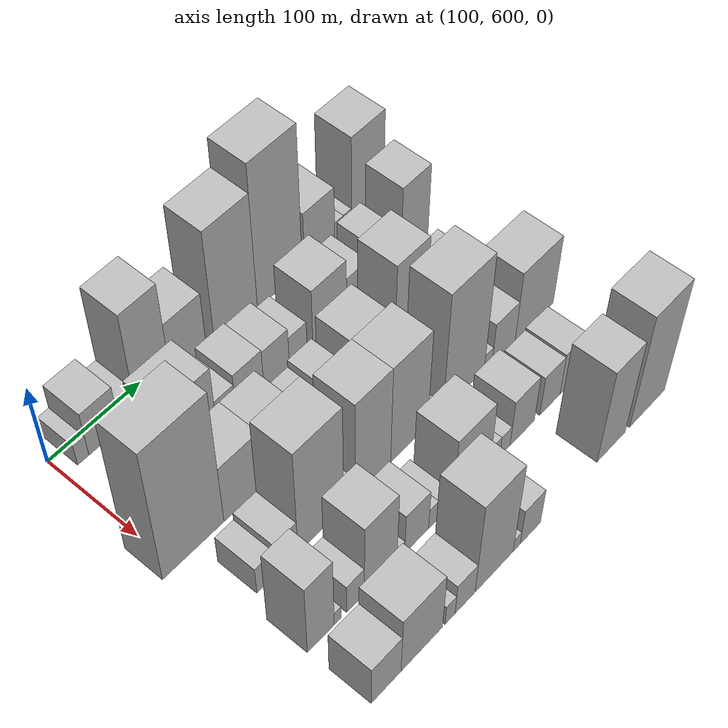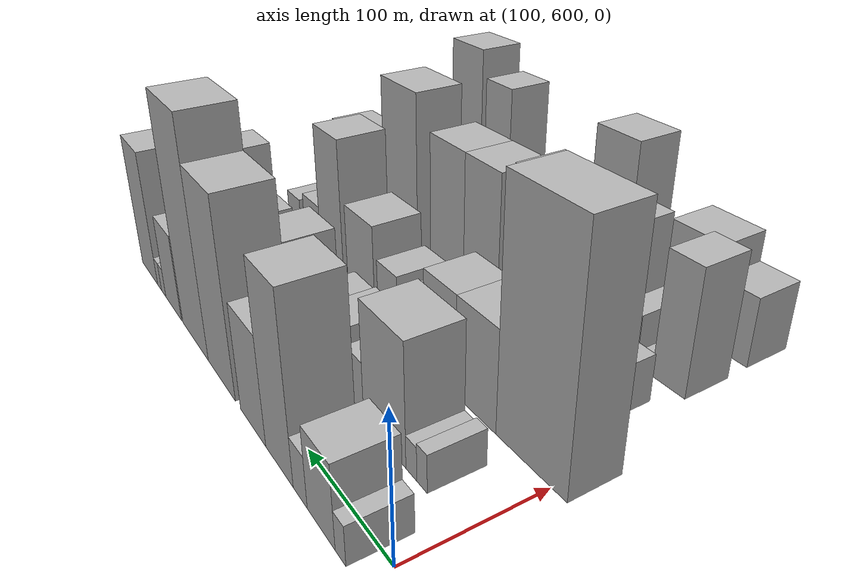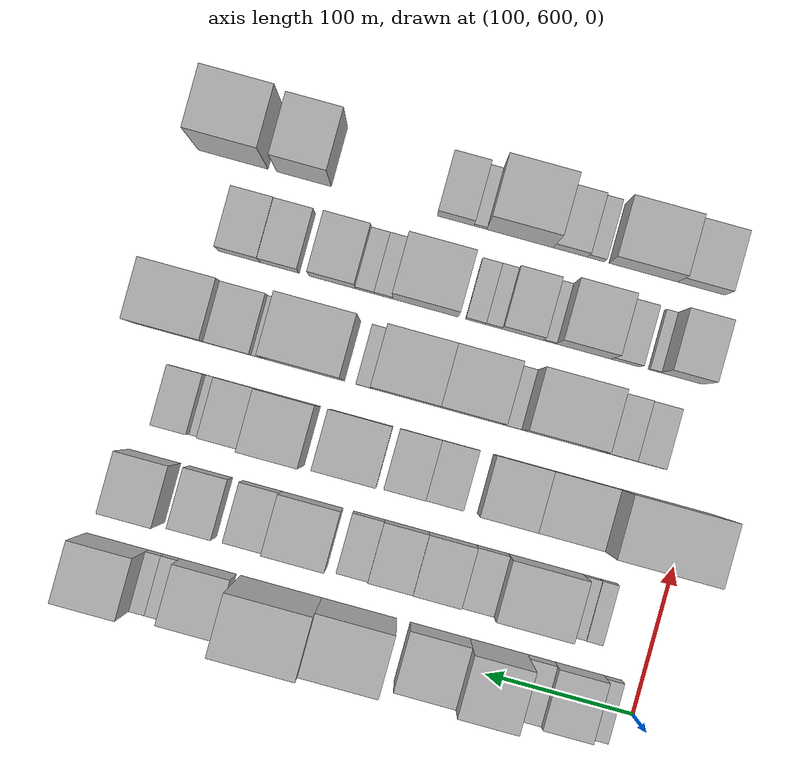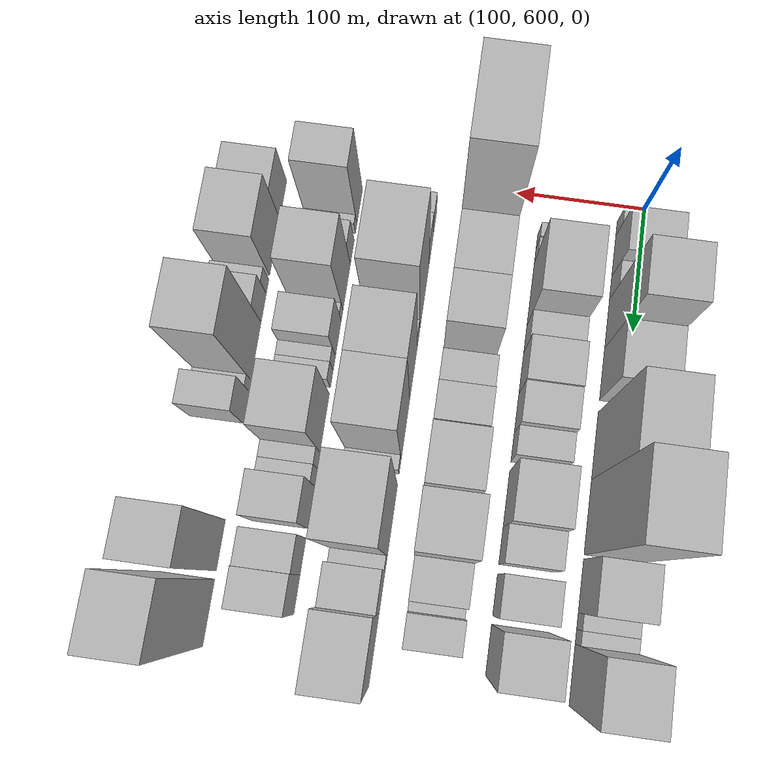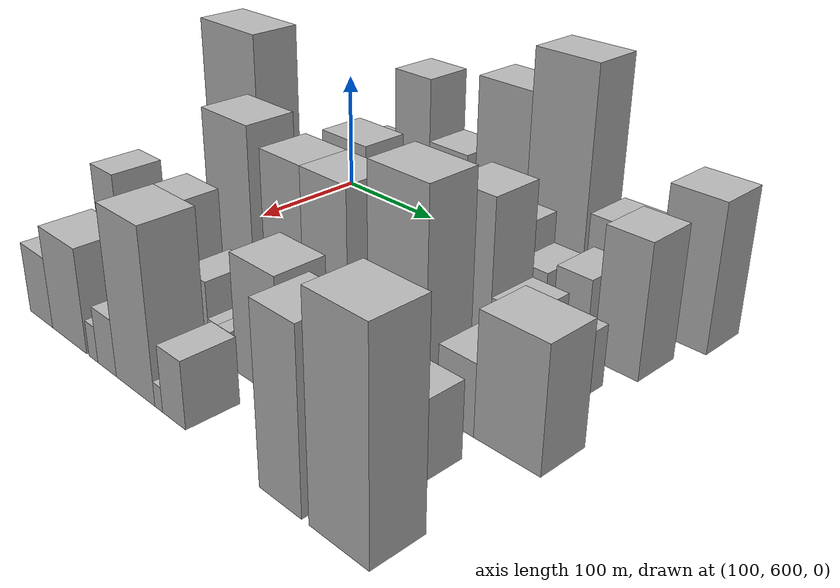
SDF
<sdf version="1.6">
 <world name="default">
  <model name="building_44">
   <static>1</static>
   <pose>100.0000 619.0629 0 0.000000 0.000000 0.000000</pose>
   <link name="link">
    <pose>0 0 13.50 0 0 0</pose>
    <collision name="collision"><geometry><box><size>40.0000 11.8824 27.0000</size></box></geometry></collision>
    <visual name="visual">
     <cast_shadows>0</cast_shadows>
     <geometry><box><size>40.0000 11.8824 27.0000</size></box></geometry>
     <material>
      <script>
       <uri>model://HANNAS_wall/materials/scripts</uri>
       <uri>model://HANNAS_wall/materials/textures</uri>
       <name>vrc/HANNAS_wall</name>
      </script>
     </material>
    </visual>
   </link>
  </model>
  <model name="building_45">
   <static>1</static>
   <pose>100.0000 641.6522 0 0.000000 0.000000 0.000000</pose>
   <link name="link">
    <pose>0 0 28.50 0 0 0</pose>
    <collision name="collision"><geometry><box><size>40.0000 33.2962 57.0000</size></box></geometry></collision>
    <visual name="visual">
     <cast_shadows>0</cast_shadows>
     <geometry><box><size>40.0000 33.2962 57.0000</size></box></geometry>
     <material>
      <script>
       <uri>model://HANNAS_wall/materials/scripts</uri>
       <uri>model://HANNAS_wall/materials/textures</uri>
       <name>vrc/HANNAS_wall</name>
      </script>
     </material>
    </visual>
   </link>
  </model>
  <model name="building_46">
   <static>1</static>
   <pose>100.0000 667.4496 0 0.000000 0.000000 0.000000</pose>
   <link name="link">
    <pose>0 0 18.00 0 0 0</pose>
    <collision name="collision"><geometry><box><size>40.0000 18.2986 36.0000</size></box></geometry></collision>
    <visual name="visual">
     <cast_shadows>0</cast_shadows>
     <geometry><box><size>40.0000 18.2986 36.0000</size></box></geometry>
     <material>
      <script>
       <uri>model://HANNAS_wall/materials/scripts</uri>
       <uri>model://HANNAS_wall/materials/textures</uri>
       <name>vrc/HANNAS_wall</name>
      </script>
     </material>
    </visual>
   </link>
  </model>
  <model name="building_47">
   <static>1</static>
   <pose>100.0000 696.1448 0 0.000000 0.000000 0.000000</pose>
   <link name="link">
    <pose>0 0 64.50 0 0 0</pose>
    <collision name="collision"><geometry><box><size>40.0000 39.0918 129.0000</size></box></geometry></collision>
    <visual name="visual">
     <cast_shadows>0</cast_shadows>
     <geometry><box><size>40.0000 39.0918 129.0000</size></box></geometry>
     <material>
      <script>
       <uri>model://HANNAS_wall/materials/scripts</uri>
       <uri>model://HANNAS_wall/materials/textures</uri>
       <name>vrc/HANNAS_wall</name>
      </script>
     </material>
    </visual>
   </link>
  </model>
  <model name="building_48">
   <static>1</static>
   <pose>100.0000 735.9375 0 0.000000 0.000000 0.000000</pose>
   <link name="link">
    <pose>0 0 39.00 0 0 0</pose>
    <collision name="collision"><geometry><box><size>40.0000 40.4936 78.0000</size></box></geometry></collision>
    <visual name="visual">
     <cast_shadows>0</cast_shadows>
     <geometry><box><size>40.0000 40.4936 78.0000</size></box></geometry>
     <material>
      <script>
       <uri>model://HANNAS_wall/materials/scripts</uri>
       <uri>model://HANNAS_wall/materials/textures</uri>
       <name>vrc/HANNAS_wall</name>
      </script>
     </material>
    </visual>
   </link>
  </model>
  <model name="building_49">
   <static>1</static>
   <pose>100.0000 790.4984 0 0.000000 0.000000 0.000000</pose>
   <link name="link">
    <pose>0 0 72.00 0 0 0</pose>
    <collision name="collision"><geometry><box><size>40.0000 50.6283 144.0000</size></box></geometry></collision>
    <visual name="visual">
     <cast_shadows>0</cast_shadows>
     <geometry><box><size>40.0000 50.6283 144.0000</size></box></geometry>
     <material>
      <script>
       <uri>model://HANNAS_wall/materials/scripts</uri>
       <uri>model://HANNAS_wall/materials/textures</uri>
       <name>vrc/HANNAS_wall</name>
      </script>
     </material>
    </visual>
   </link>
  </model>
  <model name="building_50">
   <static>1</static>
   <pose>100.0000 843.2103 0 0.000000 0.000000 0.000000</pose>
   <link name="link">
    <pose>0 0 88.50 0 0 0</pose>
    <collision name="collision"><geometry><box><size>40.0000 54.7954 177.0000</size></box></geometry></collision>
    <visual name="visual">
     <cast_shadows>0</cast_shadows>
     <geometry><box><size>40.0000 54.7954 177.0000</size></box></geometry>
     <material>
      <script>
       <uri>model://HANNAS_wall/materials/scripts</uri>
       <uri>model://HANNAS_wall/materials/textures</uri>
       <name>vrc/HANNAS_wall</name>
      </script>
     </material>
    </visual>
   </link>
  </model>
  <model name="building_51">
   <static>1</static>
   <pose>100.0000 892.6095 0 0.000000 0.000000 0.000000</pose>
   <link name="link">
    <pose>0 0 34.50 0 0 0</pose>
    <collision name="collision"><geometry><box><size>40.0000 38.0031 69.0000</size></box></geometry></collision>
    <visual name="visual">
     <cast_shadows>0</cast_shadows>
     <geometry><box><size>40.0000 38.0031 69.0000</size></box></geometry>
     <material>
      <script>
       <uri>model://HANNAS_wall/materials/scripts</uri>
       <uri>model://HANNAS_wall/materials/textures</uri>
       <name>vrc/HANNAS_wall</name>
      </script>
     </material>
    </visual>
   </link>
  </model>
  <model name="building_52">
   <static>1</static>
   <pose>100.0000 917.2532 0 0.000000 0.000000 0.000000</pose>
   <link name="link">
    <pose>0 0 12.00 0 0 0</pose>
    <collision name="collision"><geometry><box><size>40.0000 11.2844 24.0000</size></box></geometry></collision>
    <visual name="visual">
     <cast_shadows>0</cast_shadows>
     <geometry><box><size>40.0000 11.2844 24.0000</size></box></geometry>
     <material>
      <script>
       <uri>model://HANNAS_wall/materials/scripts</uri>
       <uri>model://HANNAS_wall/materials/textures</uri>
       <name>vrc/HANNAS_wall</name>
      </script>
     </material>
    </visual>
   </link>
  </model>
  <model name="building_53">
   <static>1</static>
   <pose>100.0000 928.0059 0 0.000000 0.000000 0.000000</pose>
   <link name="link">
    <pose>0 0 12.00 0 0 0</pose>
    <collision name="collision"><geometry><box><size>40.0000 10.2210 24.0000</size></box></geometry></collision>
    <visual name="visual">
     <cast_shadows>0</cast_shadows>
     <geometry><box><size>40.0000 10.2210 24.0000</size></box></geometry>
     <material>
      <script>
       <uri>model://HANNAS_wall/materials/scripts</uri>
       <uri>model://HANNAS_wall/materials/textures</uri>
       <name>vrc/HANNAS_wall</name>
      </script>
     </material>
    </visual>
   </link>
  </model>
  <model name="building_54">
   <static>1</static>
   <pose>100.0000 954.1421 0 0.000000 0.000000 0.000000</pose>
   <link name="link">
    <pose>0 0 55.50 0 0 0</pose>
    <collision name="collision"><geometry><box><size>40.0000 42.0514 111.0000</size></box></geometry></collision>
    <visual name="visual">
     <cast_shadows>0</cast_shadows>
     <geometry><box><size>40.0000 42.0514 111.0000</size></box></geometry>
     <material>
      <script>
       <uri>model://HANNAS_wall/materials/scripts</uri>
       <uri>model://HANNAS_wall/materials/textures</uri>
       <name>vrc/HANNAS_wall</name>
      </script>
     </material>
    </visual>
   </link>
  </model>
  <model name="building_97">
   <static>1</static>
   <pose>160.0000 638.6097 0 0.000000 0.000000 0.000000</pose>
   <link name="link">
    <pose>0 0 13.50 0 0 0</pose>
    <collision name="collision"><geometry><box><size>40.0000 10.9646 27.0000</size></box></geometry></collision>
    <visual name="visual">
     <cast_shadows>0</cast_shadows>
     <geometry><box><size>40.0000 10.9646 27.0000</size></box></geometry>
     <material>
      <script>
       <uri>model://HANNAS_wall/materials/scripts</uri>
       <uri>model://HANNAS_wall/materials/textures</uri>
       <name>vrc/HANNAS_wall</name>
      </script>
     </material>
    </visual>
   </link>
  </model>
  <model name="building_98">
   <static>1</static>
   <pose>160.0000 650.0117 0 0.000000 0.000000 0.000000</pose>
   <link name="link">
    <pose>0 0 12.00 0 0 0</pose>
    <collision name="collision"><geometry><box><size>40.0000 11.8394 24.0000</size></box></geometry></collision>
    <visual name="visual">
     <cast_shadows>0</cast_shadows>
     <geometry><box><size>40.0000 11.8394 24.0000</size></box></geometry>
     <material>
      <script>
       <uri>model://HANNAS_wall/materials/scripts</uri>
       <uri>model://HANNAS_wall/materials/textures</uri>
       <name>vrc/HANNAS_wall</name>
      </script>
     </material>
    </visual>
   </link>
  </model>
  <model name="building_99">
   <static>1</static>
   <pose>160.0000 681.1576 0 0.000000 0.000000 0.000000</pose>
   <link name="link">
    <pose>0 0 43.50 0 0 0</pose>
    <collision name="collision"><geometry><box><size>40.0000 50.4524 87.0000</size></box></geometry></collision>
    <visual name="visual">
     <cast_shadows>0</cast_shadows>
     <geometry><box><size>40.0000 50.4524 87.0000</size></box></geometry>
     <material>
      <script>
       <uri>model://HANNAS_wall/materials/scripts</uri>
       <uri>model://HANNAS_wall/materials/textures</uri>
       <name>vrc/HANNAS_wall</name>
      </script>
     </material>
    </visual>
   </link>
  </model>
  <model name="building_100">
   <static>1</static>
   <pose>160.0000 717.1385 0 0.000000 0.000000 0.000000</pose>
   <link name="link">
    <pose>0 0 21.00 0 0 0</pose>
    <collision name="collision"><geometry><box><size>40.0000 21.5093 42.0000</size></box></geometry></collision>
    <visual name="visual">
     <cast_shadows>0</cast_shadows>
     <geometry><box><size>40.0000 21.5093 42.0000</size></box></geometry>
     <material>
      <script>
       <uri>model://HANNAS_wall/materials/scripts</uri>
       <uri>model://HANNAS_wall/materials/textures</uri>
       <name>vrc/HANNAS_wall</name>
      </script>
     </material>
    </visual>
   </link>
  </model>
  <model name="building_101">
   <static>1</static>
   <pose>160.0000 743.9157 0 0.000000 0.000000 0.000000</pose>
   <link name="link">
    <pose>0 0 27.00 0 0 0</pose>
    <collision name="collision"><geometry><box><size>40.0000 32.0451 54.0000</size></box></geometry></collision>
    <visual name="visual">
     <cast_shadows>0</cast_shadows>
     <geometry><box><size>40.0000 32.0451 54.0000</size></box></geometry>
     <material>
      <script>
       <uri>model://HANNAS_wall/materials/scripts</uri>
       <uri>model://HANNAS_wall/materials/textures</uri>
       <name>vrc/HANNAS_wall</name>
      </script>
     </material>
    </visual>
   </link>
  </model>
  <model name="building_102">
   <static>1</static>
   <pose>160.0000 774.8723 0 0.000000 0.000000 0.000000</pose>
   <link name="link">
    <pose>0 0 25.50 0 0 0</pose>
    <collision name="collision"><geometry><box><size>40.0000 29.8680 51.0000</size></box></geometry></collision>
    <visual name="visual">
     <cast_shadows>0</cast_shadows>
     <geometry><box><size>40.0000 29.8680 51.0000</size></box></geometry>
     <material>
      <script>
       <uri>model://HANNAS_wall/materials/scripts</uri>
       <uri>model://HANNAS_wall/materials/textures</uri>
       <name>vrc/HANNAS_wall</name>
      </script>
     </material>
    </visual>
   </link>
  </model>
  <model name="building_103">
   <static>1</static>
   <pose>160.0000 800.3740 0 0.000000 0.000000 0.000000</pose>
   <link name="link">
    <pose>0 0 19.50 0 0 0</pose>
    <collision name="collision"><geometry><box><size>40.0000 21.1355 39.0000</size></box></geometry></collision>
    <visual name="visual">
     <cast_shadows>0</cast_shadows>
     <geometry><box><size>40.0000 21.1355 39.0000</size></box></geometry>
     <material>
      <script>
       <uri>model://HANNAS_wall/materials/scripts</uri>
       <uri>model://HANNAS_wall/materials/textures</uri>
       <name>vrc/HANNAS_wall</name>
      </script>
     </material>
    </visual>
   </link>
  </model>
  <model name="building_104">
   <static>1</static>
   <pose>160.0000 838.5724 0 0.000000 0.000000 0.000000</pose>
   <link name="link">
    <pose>0 0 36.00 0 0 0</pose>
    <collision name="collision"><geometry><box><size>40.0000 41.2612 72.0000</size></box></geometry></collision>
    <visual name="visual">
     <cast_shadows>0</cast_shadows>
     <geometry><box><size>40.0000 41.2612 72.0000</size></box></geometry>
     <material>
      <script>
       <uri>model://HANNAS_wall/materials/scripts</uri>
       <uri>model://HANNAS_wall/materials/textures</uri>
       <name>vrc/HANNAS_wall</name>
      </script>
     </material>
    </visual>
   </link>
  </model>
  <model name="building_105">
   <static>1</static>
   <pose>160.0000 872.4475 0 0.000000 0.000000 0.000000</pose>
   <link name="link">
    <pose>0 0 24.00 0 0 0</pose>
    <collision name="collision"><geometry><box><size>40.0000 26.4891 48.0000</size></box></geometry></collision>
    <visual name="visual">
     <cast_shadows>0</cast_shadows>
     <geometry><box><size>40.0000 26.4891 48.0000</size></box></geometry>
     <material>
      <script>
       <uri>model://HANNAS_wall/materials/scripts</uri>
       <uri>model://HANNAS_wall/materials/textures</uri>
       <name>vrc/HANNAS_wall</name>
      </script>
     </material>
    </visual>
   </link>
  </model>
  <model name="building_106">
   <static>1</static>
   <pose>160.0000 907.2408 0 0.000000 0.000000 0.000000</pose>
   <link name="link">
    <pose>0 0 28.50 0 0 0</pose>
    <collision name="collision"><geometry><box><size>40.0000 29.0976 57.0000</size></box></geometry></collision>
    <visual name="visual">
     <cast_shadows>0</cast_shadows>
     <geometry><box><size>40.0000 29.0976 57.0000</size></box></geometry>
     <material>
      <script>
       <uri>model://HANNAS_wall/materials/scripts</uri>
       <uri>model://HANNAS_wall/materials/textures</uri>
       <name>vrc/HANNAS_wall</name>
      </script>
     </material>
    </visual>
   </link>
  </model>
  <model name="building_107">
   <static>1</static>
   <pose>160.0000 945.3582 0 0.000000 0.000000 0.000000</pose>
   <link name="link">
    <pose>0 0 49.50 0 0 0</pose>
    <collision name="collision"><geometry><box><size>40.0000 35.1372 99.0000</size></box></geometry></collision>
    <visual name="visual">
     <cast_shadows>0</cast_shadows>
     <geometry><box><size>40.0000 35.1372 99.0000</size></box></geometry>
     <material>
      <script>
       <uri>model://HANNAS_wall/materials/scripts</uri>
       <uri>model://HANNAS_wall/materials/textures</uri>
       <name>vrc/HANNAS_wall</name>
      </script>
     </material>
    </visual>
   </link>
  </model>
  <model name="building_153">
   <static>1</static>
   <pose>220.0000 619.1308 0 0.000000 0.000000 0.000000</pose>
   <link name="link">
    <pose>0 0 87.00 0 0 0</pose>
    <collision name="collision"><geometry><box><size>40.0000 65.4278 174.0000</size></box></geometry></collision>
    <visual name="visual">
     <cast_shadows>0</cast_shadows>
     <geometry><box><size>40.0000 65.4278 174.0000</size></box></geometry>
     <material>
      <script>
       <uri>model://HANNAS_wall/materials/scripts</uri>
       <uri>model://HANNAS_wall/materials/textures</uri>
       <name>vrc/HANNAS_wall</name>
      </script>
     </material>
    </visual>
   </link>
  </model>
  <model name="building_154">
   <static>1</static>
   <pose>220.0000 673.4292 0 0.000000 0.000000 0.000000</pose>
   <link name="link">
    <pose>0 0 37.50 0 0 0</pose>
    <collision name="collision"><geometry><box><size>40.0000 43.1692 75.0000</size></box></geometry></collision>
    <visual name="visual">
     <cast_shadows>0</cast_shadows>
     <geometry><box><size>40.0000 43.1692 75.0000</size></box></geometry>
     <material>
      <script>
       <uri>model://HANNAS_wall/materials/scripts</uri>
       <uri>model://HANNAS_wall/materials/textures</uri>
       <name>vrc/HANNAS_wall</name>
      </script>
     </material>
    </visual>
   </link>
  </model>
  <model name="building_155">
   <static>1</static>
   <pose>220.0000 713.9560 0 0.000000 0.000000 0.000000</pose>
   <link name="link">
    <pose>0 0 37.50 0 0 0</pose>
    <collision name="collision"><geometry><box><size>40.0000 37.8844 75.0000</size></box></geometry></collision>
    <visual name="visual">
     <cast_shadows>0</cast_shadows>
     <geometry><box><size>40.0000 37.8844 75.0000</size></box></geometry>
     <material>
      <script>
       <uri>model://HANNAS_wall/materials/scripts</uri>
       <uri>model://HANNAS_wall/materials/textures</uri>
       <name>vrc/HANNAS_wall</name>
      </script>
     </material>
    </visual>
   </link>
  </model>
  <model name="building_156">
   <static>1</static>
   <pose>220.0000 755.4532 0 0.000000 0.000000 0.000000</pose>
   <link name="link">
    <pose>0 0 21.00 0 0 0</pose>
    <collision name="collision"><geometry><box><size>40.0000 25.1099 42.0000</size></box></geometry></collision>
    <visual name="visual">
     <cast_shadows>0</cast_shadows>
     <geometry><box><size>40.0000 25.1099 42.0000</size></box></geometry>
     <material>
      <script>
       <uri>model://HANNAS_wall/materials/scripts</uri>
       <uri>model://HANNAS_wall/materials/textures</uri>
       <name>vrc/HANNAS_wall</name>
      </script>
     </material>
    </visual>
   </link>
  </model>
  <model name="building_157">
   <static>1</static>
   <pose>220.0000 781.8834 0 0.000000 0.000000 0.000000</pose>
   <link name="link">
    <pose>0 0 25.50 0 0 0</pose>
    <collision name="collision"><geometry><box><size>40.0000 27.7507 51.0000</size></box></geometry></collision>
    <visual name="visual">
     <cast_shadows>0</cast_shadows>
     <geometry><box><size>40.0000 27.7507 51.0000</size></box></geometry>
     <material>
      <script>
       <uri>model://HANNAS_wall/materials/scripts</uri>
       <uri>model://HANNAS_wall/materials/textures</uri>
       <name>vrc/HANNAS_wall</name>
      </script>
     </material>
    </visual>
   </link>
  </model>
  <model name="building_158">
   <static>1</static>
   <pose>220.0000 821.7937 0 0.000000 0.000000 0.000000</pose>
   <link name="link">
    <pose>0 0 37.50 0 0 0</pose>
    <collision name="collision"><geometry><box><size>40.0000 42.0698 75.0000</size></box></geometry></collision>
    <visual name="visual">
     <cast_shadows>0</cast_shadows>
     <geometry><box><size>40.0000 42.0698 75.0000</size></box></geometry>
     <material>
      <script>
       <uri>model://HANNAS_wall/materials/scripts</uri>
       <uri>model://HANNAS_wall/materials/textures</uri>
       <name>vrc/HANNAS_wall</name>
      </script>
     </material>
    </visual>
   </link>
  </model>
  <model name="building_159">
   <static>1</static>
   <pose>220.0000 869.3615 0 0.000000 0.000000 0.000000</pose>
   <link name="link">
    <pose>0 0 61.50 0 0 0</pose>
    <collision name="collision"><geometry><box><size>40.0000 39.0659 123.0000</size></box></geometry></collision>
    <visual name="visual">
     <cast_shadows>0</cast_shadows>
     <geometry><box><size>40.0000 39.0659 123.0000</size></box></geometry>
     <material>
      <script>
       <uri>model://HANNAS_wall/materials/scripts</uri>
       <uri>model://HANNAS_wall/materials/textures</uri>
       <name>vrc/HANNAS_wall</name>
      </script>
     </material>
    </visual>
   </link>
  </model>
  <model name="building_160">
   <static>1</static>
   <pose>220.0000 903.8473 0 0.000000 0.000000 0.000000</pose>
   <link name="link">
    <pose>0 0 27.00 0 0 0</pose>
    <collision name="collision"><geometry><box><size>40.0000 29.9055 54.0000</size></box></geometry></collision>
    <visual name="visual">
     <cast_shadows>0</cast_shadows>
     <geometry><box><size>40.0000 29.9055 54.0000</size></box></geometry>
     <material>
      <script>
       <uri>model://HANNAS_wall/materials/scripts</uri>
       <uri>model://HANNAS_wall/materials/textures</uri>
       <name>vrc/HANNAS_wall</name>
      </script>
     </material>
    </visual>
   </link>
  </model>
  <model name="building_161">
   <static>1</static>
   <pose>220.0000 922.6144 0 0.000000 0.000000 0.000000</pose>
   <link name="link">
    <pose>0 0 9.00 0 0 0</pose>
    <collision name="collision"><geometry><box><size>40.0000 7.6287 18.0000</size></box></geometry></collision>
    <visual name="visual">
     <cast_shadows>0</cast_shadows>
     <geometry><box><size>40.0000 7.6287 18.0000</size></box></geometry>
     <material>
      <script>
       <uri>model://HANNAS_wall/materials/scripts</uri>
       <uri>model://HANNAS_wall/materials/textures</uri>
       <name>vrc/HANNAS_wall</name>
      </script>
     </material>
    </visual>
   </link>
  </model>
  <model name="building_162">
   <static>1</static>
   <pose>220.0000 938.2683 0 0.000000 0.000000 0.000000</pose>
   <link name="link">
    <pose>0 0 22.50 0 0 0</pose>
    <collision name="collision"><geometry><box><size>40.0000 23.6791 45.0000</size></box></geometry></collision>
    <visual name="visual">
     <cast_shadows>0</cast_shadows>
     <geometry><box><size>40.0000 23.6791 45.0000</size></box></geometry>
     <material>
      <script>
       <uri>model://HANNAS_wall/materials/scripts</uri>
       <uri>model://HANNAS_wall/materials/textures</uri>
       <name>vrc/HANNAS_wall</name>
      </script>
     </material>
    </visual>
   </link>
  </model>
  <model name="building_204">
   <static>1</static>
   <pose>280.0000 634.4812 0 0.000000 0.000000 0.000000</pose>
   <link name="link">
    <pose>0 0 18.00 0 0 0</pose>
    <collision name="collision"><geometry><box><size>40.0000 19.9906 36.0000</size></box></geometry></collision>
    <visual name="visual">
     <cast_shadows>0</cast_shadows>
     <geometry><box><size>40.0000 19.9906 36.0000</size></box></geometry>
     <material>
      <script>
       <uri>model://HANNAS_wall/materials/scripts</uri>
       <uri>model://HANNAS_wall/materials/textures</uri>
       <name>vrc/HANNAS_wall</name>
      </script>
     </material>
    </visual>
   </link>
  </model>
  <model name="building_205">
   <static>1</static>
   <pose>280.0000 656.8509 0 0.000000 0.000000 0.000000</pose>
   <link name="link">
    <pose>0 0 22.50 0 0 0</pose>
    <collision name="collision"><geometry><box><size>40.0000 24.7489 45.0000</size></box></geometry></collision>
    <visual name="visual">
     <cast_shadows>0</cast_shadows>
     <geometry><box><size>40.0000 24.7489 45.0000</size></box></geometry>
     <material>
      <script>
       <uri>model://HANNAS_wall/materials/scripts</uri>
       <uri>model://HANNAS_wall/materials/textures</uri>
       <name>vrc/HANNAS_wall</name>
      </script>
     </material>
    </visual>
   </link>
  </model>
  <model name="building_206">
   <static>1</static>
   <pose>280.0000 694.8767 0 0.000000 0.000000 0.000000</pose>
   <link name="link">
    <pose>0 0 69.00 0 0 0</pose>
    <collision name="collision"><geometry><box><size>40.0000 51.3027 138.0000</size></box></geometry></collision>
    <visual name="visual">
     <cast_shadows>0</cast_shadows>
     <geometry><box><size>40.0000 51.3027 138.0000</size></box></geometry>
     <material>
      <script>
       <uri>model://HANNAS_wall/materials/scripts</uri>
       <uri>model://HANNAS_wall/materials/textures</uri>
       <name>vrc/HANNAS_wall</name>
      </script>
     </material>
    </visual>
   </link>
  </model>
  <model name="building_207">
   <static>1</static>
   <pose>280.0000 727.0608 0 0.000000 0.000000 0.000000</pose>
   <link name="link">
    <pose>0 0 13.50 0 0 0</pose>
    <collision name="collision"><geometry><box><size>40.0000 13.0656 27.0000</size></box></geometry></collision>
    <visual name="visual">
     <cast_shadows>0</cast_shadows>
     <geometry><box><size>40.0000 13.0656 27.0000</size></box></geometry>
     <material>
      <script>
       <uri>model://HANNAS_wall/materials/scripts</uri>
       <uri>model://HANNAS_wall/materials/textures</uri>
       <name>vrc/HANNAS_wall</name>
      </script>
     </material>
    </visual>
   </link>
  </model>
  <model name="building_208">
   <static>1</static>
   <pose>280.0000 754.4481 0 0.000000 0.000000 0.000000</pose>
   <link name="link">
    <pose>0 0 63.00 0 0 0</pose>
    <collision name="collision"><geometry><box><size>40.0000 41.7089 126.0000</size></box></geometry></collision>
    <visual name="visual">
     <cast_shadows>0</cast_shadows>
     <geometry><box><size>40.0000 41.7089 126.0000</size></box></geometry>
     <material>
      <script>
       <uri>model://HANNAS_wall/materials/scripts</uri>
       <uri>model://HANNAS_wall/materials/textures</uri>
       <name>vrc/HANNAS_wall</name>
      </script>
     </material>
    </visual>
   </link>
  </model>
  <model name="building_209">
   <static>1</static>
   <pose>280.0000 797.7124 0 0.000000 0.000000 0.000000</pose>
   <link name="link">
    <pose>0 0 63.00 0 0 0</pose>
    <collision name="collision"><geometry><box><size>40.0000 44.8197 126.0000</size></box></geometry></collision>
    <visual name="visual">
     <cast_shadows>0</cast_shadows>
     <geometry><box><size>40.0000 44.8197 126.0000</size></box></geometry>
     <material>
      <script>
       <uri>model://HANNAS_wall/materials/scripts</uri>
       <uri>model://HANNAS_wall/materials/textures</uri>
       <name>vrc/HANNAS_wall</name>
      </script>
     </material>
    </visual>
   </link>
  </model>
  <model name="building_210">
   <static>1</static>
   <pose>280.0000 825.6430 0 0.000000 0.000000 0.000000</pose>
   <link name="link">
    <pose>0 0 12.00 0 0 0</pose>
    <collision name="collision"><geometry><box><size>40.0000 11.0416 24.0000</size></box></geometry></collision>
    <visual name="visual">
     <cast_shadows>0</cast_shadows>
     <geometry><box><size>40.0000 11.0416 24.0000</size></box></geometry>
     <material>
      <script>
       <uri>model://HANNAS_wall/materials/scripts</uri>
       <uri>model://HANNAS_wall/materials/textures</uri>
       <name>vrc/HANNAS_wall</name>
      </script>
     </material>
    </visual>
   </link>
  </model>
  <model name="building_211">
   <static>1</static>
   <pose>280.0000 865.0392 0 0.000000 0.000000 0.000000</pose>
   <link name="link">
    <pose>0 0 75.00 0 0 0</pose>
    <collision name="collision"><geometry><box><size>40.0000 51.7509 150.0000</size></box></geometry></collision>
    <visual name="visual">
     <cast_shadows>0</cast_shadows>
     <geometry><box><size>40.0000 51.7509 150.0000</size></box></geometry>
     <material>
      <script>
       <uri>model://HANNAS_wall/materials/scripts</uri>
       <uri>model://HANNAS_wall/materials/textures</uri>
       <name>vrc/HANNAS_wall</name>
      </script>
     </material>
    </visual>
   </link>
  </model>
  <model name="building_212">
   <static>1</static>
   <pose>280.0000 896.0442 0 0.000000 0.000000 0.000000</pose>
   <link name="link">
    <pose>0 0 10.50 0 0 0</pose>
    <collision name="collision"><geometry><box><size>40.0000 10.2590 21.0000</size></box></geometry></collision>
    <visual name="visual">
     <cast_shadows>0</cast_shadows>
     <geometry><box><size>40.0000 10.2590 21.0000</size></box></geometry>
     <material>
      <script>
       <uri>model://HANNAS_wall/materials/scripts</uri>
       <uri>model://HANNAS_wall/materials/textures</uri>
       <name>vrc/HANNAS_wall</name>
      </script>
     </material>
    </visual>
   </link>
  </model>
  <model name="building_213">
   <static>1</static>
   <pose>280.0000 916.1722 0 0.000000 0.000000 0.000000</pose>
   <link name="link">
    <pose>0 0 25.50 0 0 0</pose>
    <collision name="collision"><geometry><box><size>40.0000 29.9971 51.0000</size></box></geometry></collision>
    <visual name="visual">
     <cast_shadows>0</cast_shadows>
     <geometry><box><size>40.0000 29.9971 51.0000</size></box></geometry>
     <material>
      <script>
       <uri>model://HANNAS_wall/materials/scripts</uri>
       <uri>model://HANNAS_wall/materials/textures</uri>
       <name>vrc/HANNAS_wall</name>
      </script>
     </material>
    </visual>
   </link>
  </model>
  <model name="building_214">
   <static>1</static>
   <pose>280.0000 956.5689 0 0.000000 0.000000 0.000000</pose>
   <link name="link">
    <pose>0 0 43.50 0 0 0</pose>
    <collision name="collision"><geometry><box><size>40.0000 50.7962 87.0000</size></box></geometry></collision>
    <visual name="visual">
     <cast_shadows>0</cast_shadows>
     <geometry><box><size>40.0000 50.7962 87.0000</size></box></geometry>
     <material>
      <script>
       <uri>model://HANNAS_wall/materials/scripts</uri>
       <uri>model://HANNAS_wall/materials/textures</uri>
       <name>vrc/HANNAS_wall</name>
      </script>
     </material>
    </visual>
   </link>
  </model>
  <model name="building_266">
   <static>1</static>
   <pose>340.0000 628.2412 0 0.000000 0.000000 0.000000</pose>
   <link name="link">
    <pose>0 0 48.00 0 0 0</pose>
    <collision name="collision"><geometry><box><size>40.0000 28.8019 96.0000</size></box></geometry></collision>
    <visual name="visual">
     <cast_shadows>0</cast_shadows>
     <geometry><box><size>40.0000 28.8019 96.0000</size></box></geometry>
     <material>
      <script>
       <uri>model://HANNAS_wall/materials/scripts</uri>
       <uri>model://HANNAS_wall/materials/textures</uri>
       <name>vrc/HANNAS_wall</name>
      </script>
     </material>
    </visual>
   </link>
  </model>
  <model name="building_267">
   <static>1</static>
   <pose>340.0000 646.4974 0 0.000000 0.000000 0.000000</pose>
   <link name="link">
    <pose>0 0 9.00 0 0 0</pose>
    <collision name="collision"><geometry><box><size>40.0000 7.7104 18.0000</size></box></geometry></collision>
    <visual name="visual">
     <cast_shadows>0</cast_shadows>
     <geometry><box><size>40.0000 7.7104 18.0000</size></box></geometry>
     <material>
      <script>
       <uri>model://HANNAS_wall/materials/scripts</uri>
       <uri>model://HANNAS_wall/materials/textures</uri>
       <name>vrc/HANNAS_wall</name>
      </script>
     </material>
    </visual>
   </link>
  </model>
  <model name="building_268">
   <static>1</static>
   <pose>340.0000 666.1108 0 0.000000 0.000000 0.000000</pose>
   <link name="link">
    <pose>0 0 19.50 0 0 0</pose>
    <collision name="collision"><geometry><box><size>40.0000 19.5166 39.0000</size></box></geometry></collision>
    <visual name="visual">
     <cast_shadows>0</cast_shadows>
     <geometry><box><size>40.0000 19.5166 39.0000</size></box></geometry>
     <material>
      <script>
       <uri>model://HANNAS_wall/materials/scripts</uri>
       <uri>model://HANNAS_wall/materials/textures</uri>
       <name>vrc/HANNAS_wall</name>
      </script>
     </material>
    </visual>
   </link>
  </model>
  <model name="building_269">
   <static>1</static>
   <pose>340.0000 694.3145 0 0.000000 0.000000 0.000000</pose>
   <link name="link">
    <pose>0 0 48.00 0 0 0</pose>
    <collision name="collision"><geometry><box><size>40.0000 36.8908 96.0000</size></box></geometry></collision>
    <visual name="visual">
     <cast_shadows>0</cast_shadows>
     <geometry><box><size>40.0000 36.8908 96.0000</size></box></geometry>
     <material>
      <script>
       <uri>model://HANNAS_wall/materials/scripts</uri>
       <uri>model://HANNAS_wall/materials/textures</uri>
       <name>vrc/HANNAS_wall</name>
      </script>
     </material>
    </visual>
   </link>
  </model>
  <model name="building_270">
   <static>1</static>
   <pose>340.0000 717.1899 0 0.000000 0.000000 0.000000</pose>
   <link name="link">
    <pose>0 0 9.00 0 0 0</pose>
    <collision name="collision"><geometry><box><size>40.0000 8.8599 18.0000</size></box></geometry></collision>
    <visual name="visual">
     <cast_shadows>0</cast_shadows>
     <geometry><box><size>40.0000 8.8599 18.0000</size></box></geometry>
     <material>
      <script>
       <uri>model://HANNAS_wall/materials/scripts</uri>
       <uri>model://HANNAS_wall/materials/textures</uri>
       <name>vrc/HANNAS_wall</name>
      </script>
     </material>
    </visual>
   </link>
  </model>
  <model name="building_271">
   <static>1</static>
   <pose>340.0000 735.5156 0 0.000000 0.000000 0.000000</pose>
   <link name="link">
    <pose>0 0 27.00 0 0 0</pose>
    <collision name="collision"><geometry><box><size>40.0000 27.7917 54.0000</size></box></geometry></collision>
    <visual name="visual">
     <cast_shadows>0</cast_shadows>
     <geometry><box><size>40.0000 27.7917 54.0000</size></box></geometry>
     <material>
      <script>
       <uri>model://HANNAS_wall/materials/scripts</uri>
       <uri>model://HANNAS_wall/materials/textures</uri>
       <name>vrc/HANNAS_wall</name>
      </script>
     </material>
    </visual>
   </link>
  </model>
  <model name="building_272">
   <static>1</static>
   <pose>340.0000 754.9275 0 0.000000 0.000000 0.000000</pose>
   <link name="link">
    <pose>0 0 13.50 0 0 0</pose>
    <collision name="collision"><geometry><box><size>40.0000 11.0321 27.0000</size></box></geometry></collision>
    <visual name="visual">
     <cast_shadows>0</cast_shadows>
     <geometry><box><size>40.0000 11.0321 27.0000</size></box></geometry>
     <material>
      <script>
       <uri>model://HANNAS_wall/materials/scripts</uri>
       <uri>model://HANNAS_wall/materials/textures</uri>
       <name>vrc/HANNAS_wall</name>
      </script>
     </material>
    </visual>
   </link>
  </model>
  <model name="building_273">
   <static>1</static>
   <pose>340.0000 767.1359 0 0.000000 0.000000 0.000000</pose>
   <link name="link">
    <pose>0 0 13.50 0 0 0</pose>
    <collision name="collision"><geometry><box><size>40.0000 13.3847 27.0000</size></box></geometry></collision>
    <visual name="visual">
     <cast_shadows>0</cast_shadows>
     <geometry><box><size>40.0000 13.3847 27.0000</size></box></geometry>
     <material>
      <script>
       <uri>model://HANNAS_wall/materials/scripts</uri>
       <uri>model://HANNAS_wall/materials/textures</uri>
       <name>vrc/HANNAS_wall</name>
      </script>
     </material>
    </visual>
   </link>
  </model>
  <model name="building_274">
   <static>1</static>
   <pose>340.0000 800.9367 0 0.000000 0.000000 0.000000</pose>
   <link name="link">
    <pose>0 0 43.50 0 0 0</pose>
    <collision name="collision"><geometry><box><size>40.0000 44.2169 87.0000</size></box></geometry></collision>
    <visual name="visual">
     <cast_shadows>0</cast_shadows>
     <geometry><box><size>40.0000 44.2169 87.0000</size></box></geometry>
     <material>
      <script>
       <uri>model://HANNAS_wall/materials/scripts</uri>
       <uri>model://HANNAS_wall/materials/textures</uri>
       <name>vrc/HANNAS_wall</name>
      </script>
     </material>
    </visual>
   </link>
  </model>
  <model name="building_275">
   <static>1</static>
   <pose>340.0000 829.2828 0 0.000000 0.000000 0.000000</pose>
   <link name="link">
    <pose>0 0 13.50 0 0 0</pose>
    <collision name="collision"><geometry><box><size>40.0000 12.4754 27.0000</size></box></geometry></collision>
    <visual name="visual">
     <cast_shadows>0</cast_shadows>
     <geometry><box><size>40.0000 12.4754 27.0000</size></box></geometry>
     <material>
      <script>
       <uri>model://HANNAS_wall/materials/scripts</uri>
       <uri>model://HANNAS_wall/materials/textures</uri>
       <name>vrc/HANNAS_wall</name>
      </script>
     </material>
    </visual>
   </link>
  </model>
  <model name="building_276">
   <static>1</static>
   <pose>340.0000 841.8689 0 0.000000 0.000000 0.000000</pose>
   <link name="link">
    <pose>0 0 13.50 0 0 0</pose>
    <collision name="collision"><geometry><box><size>40.0000 12.6969 27.0000</size></box></geometry></collision>
    <visual name="visual">
     <cast_shadows>0</cast_shadows>
     <geometry><box><size>40.0000 12.6969 27.0000</size></box></geometry>
     <material>
      <script>
       <uri>model://HANNAS_wall/materials/scripts</uri>
       <uri>model://HANNAS_wall/materials/textures</uri>
       <name>vrc/HANNAS_wall</name>
      </script>
     </material>
    </visual>
   </link>
  </model>
  <model name="building_277">
   <static>1</static>
   <pose>340.0000 863.7288 0 0.000000 0.000000 0.000000</pose>
   <link name="link">
    <pose>0 0 30.00 0 0 0</pose>
    <collision name="collision"><geometry><box><size>40.0000 31.0229 60.0000</size></box></geometry></collision>
    <visual name="visual">
     <cast_shadows>0</cast_shadows>
     <geometry><box><size>40.0000 31.0229 60.0000</size></box></geometry>
     <material>
      <script>
       <uri>model://HANNAS_wall/materials/scripts</uri>
       <uri>model://HANNAS_wall/materials/textures</uri>
       <name>vrc/HANNAS_wall</name>
      </script>
     </material>
    </visual>
   </link>
  </model>
  <model name="building_278">
   <static>1</static>
   <pose>340.0000 899.3199 0 0.000000 0.000000 0.000000</pose>
   <link name="link">
    <pose>0 0 25.50 0 0 0</pose>
    <collision name="collision"><geometry><box><size>40.0000 26.1593 51.0000</size></box></geometry></collision>
    <visual name="visual">
     <cast_shadows>0</cast_shadows>
     <geometry><box><size>40.0000 26.1593 51.0000</size></box></geometry>
     <material>
      <script>
       <uri>model://HANNAS_wall/materials/scripts</uri>
       <uri>model://HANNAS_wall/materials/textures</uri>
       <name>vrc/HANNAS_wall</name>
      </script>
     </material>
    </visual>
   </link>
  </model>
  <model name="building_279">
   <static>1</static>
   <pose>340.0000 926.4041 0 0.000000 0.000000 0.000000</pose>
   <link name="link">
    <pose>0 0 27.00 0 0 0</pose>
    <collision name="collision"><geometry><box><size>40.0000 28.0090 54.0000</size></box></geometry></collision>
    <visual name="visual">
     <cast_shadows>0</cast_shadows>
     <geometry><box><size>40.0000 28.0090 54.0000</size></box></geometry>
     <material>
      <script>
       <uri>model://HANNAS_wall/materials/scripts</uri>
       <uri>model://HANNAS_wall/materials/textures</uri>
       <name>vrc/HANNAS_wall</name>
      </script>
     </material>
    </visual>
   </link>
  </model>
  <model name="building_318">
   <static>1</static>
   <pose>400.0000 630.9518 0 0.000000 0.000000 0.000000</pose>
   <link name="link">
    <pose>0 0 27.00 0 0 0</pose>
    <collision name="collision"><geometry><box><size>40.0000 32.3129 54.0000</size></box></geometry></collision>
    <visual name="visual">
     <cast_shadows>0</cast_shadows>
     <geometry><box><size>40.0000 32.3129 54.0000</size></box></geometry>
     <material>
      <script>
       <uri>model://HANNAS_wall/materials/scripts</uri>
       <uri>model://HANNAS_wall/materials/textures</uri>
       <name>vrc/HANNAS_wall</name>
      </script>
     </material>
    </visual>
   </link>
  </model>
  <model name="building_319">
   <static>1</static>
   <pose>400.0000 670.2664 0 0.000000 0.000000 0.000000</pose>
   <link name="link">
    <pose>0 0 39.00 0 0 0</pose>
    <collision name="collision"><geometry><box><size>40.0000 46.3162 78.0000</size></box></geometry></collision>
    <visual name="visual">
     <cast_shadows>0</cast_shadows>
     <geometry><box><size>40.0000 46.3162 78.0000</size></box></geometry>
     <material>
      <script>
       <uri>model://HANNAS_wall/materials/scripts</uri>
       <uri>model://HANNAS_wall/materials/textures</uri>
       <name>vrc/HANNAS_wall</name>
      </script>
     </material>
    </visual>
   </link>
  </model>
  <model name="building_320">
   <static>1</static>
   <pose>400.0000 702.1733 0 0.000000 0.000000 0.000000</pose>
   <link name="link">
    <pose>0 0 13.50 0 0 0</pose>
    <collision name="collision"><geometry><box><size>40.0000 11.4976 27.0000</size></box></geometry></collision>
    <visual name="visual">
     <cast_shadows>0</cast_shadows>
     <geometry><box><size>40.0000 11.4976 27.0000</size></box></geometry>
     <material>
      <script>
       <uri>model://HANNAS_wall/materials/scripts</uri>
       <uri>model://HANNAS_wall/materials/textures</uri>
       <name>vrc/HANNAS_wall</name>
      </script>
     </material>
    </visual>
   </link>
  </model>
  <model name="building_321">
   <static>1</static>
   <pose>400.0000 719.4535 0 0.000000 0.000000 0.000000</pose>
   <link name="link">
    <pose>0 0 21.00 0 0 0</pose>
    <collision name="collision"><geometry><box><size>40.0000 23.0630 42.0000</size></box></geometry></collision>
    <visual name="visual">
     <cast_shadows>0</cast_shadows>
     <geometry><box><size>40.0000 23.0630 42.0000</size></box></geometry>
     <material>
      <script>
       <uri>model://HANNAS_wall/materials/scripts</uri>
       <uri>model://HANNAS_wall/materials/textures</uri>
       <name>vrc/HANNAS_wall</name>
      </script>
     </material>
    </visual>
   </link>
  </model>
  <model name="building_322">
   <static>1</static>
   <pose>400.0000 753.5172 0 0.000000 0.000000 0.000000</pose>
   <link name="link">
    <pose>0 0 61.50 0 0 0</pose>
    <collision name="collision"><geometry><box><size>40.0000 45.0643 123.0000</size></box></geometry></collision>
    <visual name="visual">
     <cast_shadows>0</cast_shadows>
     <geometry><box><size>40.0000 45.0643 123.0000</size></box></geometry>
     <material>
      <script>
       <uri>model://HANNAS_wall/materials/scripts</uri>
       <uri>model://HANNAS_wall/materials/textures</uri>
       <name>vrc/HANNAS_wall</name>
      </script>
     </material>
    </visual>
   </link>
  </model>
  <model name="building_323">
   <static>1</static>
   <pose>400.0000 780.3546 0 0.000000 0.000000 0.000000</pose>
   <link name="link">
    <pose>0 0 9.00 0 0 0</pose>
    <collision name="collision"><geometry><box><size>40.0000 8.6105 18.0000</size></box></geometry></collision>
    <visual name="visual">
     <cast_shadows>0</cast_shadows>
     <geometry><box><size>40.0000 8.6105 18.0000</size></box></geometry>
     <material>
      <script>
       <uri>model://HANNAS_wall/materials/scripts</uri>
       <uri>model://HANNAS_wall/materials/textures</uri>
       <name>vrc/HANNAS_wall</name>
      </script>
     </material>
    </visual>
   </link>
  </model>
  <model name="building_324">
   <static>1</static>
   <pose>400.0000 797.0001 0 0.000000 0.000000 0.000000</pose>
   <link name="link">
    <pose>0 0 24.00 0 0 0</pose>
    <collision name="collision"><geometry><box><size>40.0000 24.6804 48.0000</size></box></geometry></collision>
    <visual name="visual">
     <cast_shadows>0</cast_shadows>
     <geometry><box><size>40.0000 24.6804 48.0000</size></box></geometry>
     <material>
      <script>
       <uri>model://HANNAS_wall/materials/scripts</uri>
       <uri>model://HANNAS_wall/materials/textures</uri>
       <name>vrc/HANNAS_wall</name>
      </script>
     </material>
    </visual>
   </link>
  </model>
  <model name="building_325">
   <static>1</static>
   <pose>400.0000 899.4631 0 0.000000 0.000000 0.000000</pose>
   <link name="link">
    <pose>0 0 60.00 0 0 0</pose>
    <collision name="collision"><geometry><box><size>40.0000 36.7486 120.0000</size></box></geometry></collision>
    <visual name="visual">
     <cast_shadows>0</cast_shadows>
     <geometry><box><size>40.0000 36.7486 120.0000</size></box></geometry>
     <material>
      <script>
       <uri>model://HANNAS_wall/materials/scripts</uri>
       <uri>model://HANNAS_wall/materials/textures</uri>
       <name>vrc/HANNAS_wall</name>
      </script>
     </material>
    </visual>
   </link>
  </model>
  <model name="building_326">
   <static>1</static>
   <pose>400.0000 947.3772 0 0.000000 0.000000 0.000000</pose>
   <link name="link">
    <pose>0 0 72.00 0 0 0</pose>
    <collision name="collision"><geometry><box><size>40.0000 47.0797 144.0000</size></box></geometry></collision>
    <visual name="visual">
     <cast_shadows>0</cast_shadows>
     <geometry><box><size>40.0000 47.0797 144.0000</size></box></geometry>
     <material>
      <script>
       <uri>model://HANNAS_wall/materials/scripts</uri>
       <uri>model://HANNAS_wall/materials/textures</uri>
       <name>vrc/HANNAS_wall</name>
      </script>
     </material>
    </visual>
   </link>
  </model>
 </world>
</sdf>
